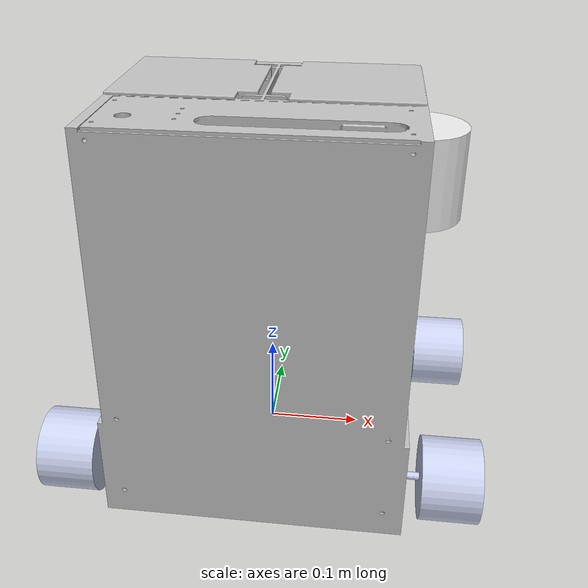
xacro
<?xml version="1.0" encoding="utf-8"?>

<robot
  name="LURDFLGded" xmlns:xacro="http://www.eos.org/wiki/xacro">
  <xacro:include filename="$(find LURDFLGded)/urdf/LURDFLGded.gazebo"/>

  <link
    name="chassis">
    <inertial>
      <origin
        xyz="0.00046120538022093 -0.0153335172566905 0.158906304765902"
        rpy="0 0 0" />
      <mass
        value="4.33488930099209" />
      <inertia
        ixx="0.0490323359013021"
        ixy="0.000138117214056931"
        ixz="-0.0001587753774894"
        iyy="0.054147420803515"
        iyz="0.000619047454446421"
        izz="0.0602418126312572" />
    </inertial>
    <visual>
      <origin
        xyz="0 0 0"
        rpy="0 0 0" />
      <geometry>
        <mesh
          filename="package://LURDFLGded/meshes/base_link.STL" />
      </geometry>
      <material
        name="">
        <color
          rgba="0.752941176470588 0.752941176470588 0.752941176470588 1" />
      </material>
    </visual>
    <collision>
      <origin
        xyz="0 0 0"
        rpy="0 0 0" />
      <geometry>
        <mesh
          filename="package://LURDFLGded/meshes/base_link.STL" />
      </geometry>
    </collision>
  </link>
  <link
    name="wheelLbot">
    <inertial>
      <origin
        xyz="0.0301033654509815 0 5.20417042793042E-17"
        rpy="0 0 0" />
      <mass
        value="0.341374882517028" />
      <inertia
        ixx="0.000307494300753466"
        ixy="1.89763592430369E-21"
        ixz="8.32044667171621E-20"
        iyy="0.000257285131538352"
        iyz="2.19316354091534E-20"
        izz="0.000257285131538352" />
    </inertial>
    <visual>
      <origin
        xyz="0 0 0"
        rpy="0 0 0" />
      <geometry>
        <mesh
          filename="package://LURDFLGded/meshes/wheelLbot.STL" />
      </geometry>
      <material
        name="">
        <color
          rgba="0.792156862745098 0.819607843137255 0.933333333333333 1" />
      </material>
    </visual>
    <collision>
      <origin
        xyz="0 0 0"
        rpy="0 0 0" />
      <geometry>
        <mesh
          filename="package://LURDFLGded/meshes/wheelLbot.STL" />
      </geometry>
    </collision>
  </link>
  <joint
    name="left wheel bottom"
    type="revolute">
    <origin
      xyz="-0.22746 -0.12 0.0285"
      rpy="0 0 0" />
    <parent
      link="chassis" />
    <child
      link="wheelLbot" />
    <axis
      xyz="-1 0 0" />
    <limit
      lower="0"
      upper="1"
      effort="1"
      velocity="1" />
  </joint>
  <link
    name="WheelRbot">
    <inertial>
      <origin
        xyz="-0.0301033654509815 -4.85722573273506E-17 -3.46944695195361E-18"
        rpy="0 0 0" />
      <mass
        value="0.341374882517028" />
      <inertia
        ixx="0.000307494300753466"
        ixy="7.91751685575152E-20"
        ixz="-2.40257481487409E-21"
        iyy="0.000257285131538352"
        iyz="-1.82039705356076E-21"
        izz="0.000257285131538352" />
    </inertial>
    <visual>
      <origin
        xyz="0 0 0"
        rpy="0 0 0" />
      <geometry>
        <mesh
          filename="package://LURDFLGded/meshes/WheelRbot.STL" />
      </geometry>
      <material
        name="">
        <color
          rgba="0.792156862745098 0.819607843137255 0.933333333333333 1" />
      </material>
    </visual>
    <collision>
      <origin
        xyz="0 0 0"
        rpy="0 0 0" />
      <geometry>
        <mesh
          filename="package://LURDFLGded/meshes/WheelRbot.STL" />
      </geometry>
    </collision>
  </link>
  <joint
    name="right wheel bottom"
    type="revolute">
    <origin
      xyz="0.22746 -0.12 0.0285"
      rpy="0 0 0" />
    <parent
      link="chassis" />
    <child
      link="WheelRbot" />
    <axis
      xyz="1 0 0" />
    <limit
      lower="0"
      upper="1"
      effort="1"
      velocity="1" />
  </joint>
  <link
    name="wheelLtop">
    <inertial>
      <origin
        xyz="0.0301033654509821 1.66533453693773E-16 -5.3776427755281E-16"
        rpy="0 0 0" />
      <mass
        value="0.341374882517028" />
      <inertia
        ixx="0.000307494300753466"
        ixy="-7.23030661146666E-21"
        ixz="-8.86422056017286E-20"
        iyy="0.000257285131538352"
        iyz="-7.02011642261501E-21"
        izz="0.000257285131538352" />
    </inertial>
    <visual>
      <origin
        xyz="0 0 0"
        rpy="0 0 0" />
      <geometry>
        <mesh
          filename="package://LURDFLGded/meshes/wheelLtop.STL" />
      </geometry>
      <material
        name="">
        <color
          rgba="0.792156862745098 0.819607843137255 0.933333333333333 1" />
      </material>
    </visual>
    <collision>
      <origin
        xyz="0 0 0"
        rpy="0 0 0" />
      <geometry>
        <mesh
          filename="package://LURDFLGded/meshes/wheelLtop.STL" />
      </geometry>
    </collision>
  </link>

<link name="sensor_laser">
    <inertial>
      <origin xyz="0 0 0" rpy="0 0 0" />
      <mass value="1" />
      <!-- RANDOM INERTIA BELOW -->
      <inertia ixx="0.02" ixy="0" ixz="0" iyy="0.02" iyz="0" izz="0.02"/>
    </inertial>

    <visual>
      <origin xyz="0 0 0" rpy="0 0 0" />
      <geometry>
        <cylinder radius="0.05" length="0.1"/>
      </geometry>
      <material name="white" />
    </visual>

    <collision>
      <origin xyz="0 0 0" rpy="0 0 0"/>
      <geometry>
        <cylinder radius="0.05" length="0.1"/>
      </geometry>
    </collision>
  </link>

  <joint
    name="left wheel top"
    type="revolute">
    <origin
      xyz="-0.22746 0.12 0.0285"
      rpy="0 0 0" />
    <parent
      link="chassis" />
    <child
      link="wheelLtop" />
    <axis
      xyz="-1 0 0" />
    <limit
      lower="0"
      upper="1"
      effort="1"
      velocity="1" />
  </joint>
  <link
    name="wheelRtop">
    <inertial>
      <origin
        xyz="-0.0301033654509815 -5.55111512312578E-17 0"
        rpy="0 0 0" />
      <mass
        value="0.341374882517028" />
      <inertia
        ixx="0.000307494300753466"
        ixy="8.46642739148505E-20"
        ixz="2.09640505019045E-21"
        iyy="0.000257285131538352"
        iyz="1.39265226528679E-21"
        izz="0.000257285131538352" />
    </inertial>
    <visual>
      <origin
        xyz="0 0 0"
        rpy="0 0 0" />
      <geometry>
        <mesh
          filename="package://LURDFLGded/meshes/wheelRtop.STL" />
      </geometry>
      <material
        name="">
        <color
          rgba="0.792156862745098 0.819607843137255 0.933333333333333 1" />
      </material>
    </visual>
    <collision>
      <origin
        xyz="0 0 0"
        rpy="0 0 0" />
      <geometry>
        <mesh
          filename="package://LURDFLGded/meshes/wheelRtop.STL" />
      </geometry>
    </collision>
  </link>
  <joint
    name="right wheel top"
    type="revolute">
    <origin
      xyz="0.22746 0.12 0.0285"
      rpy="0 0 0" />
    <parent
      link="chassis" />
    <child
      link="wheelRtop" />
    <axis
      xyz="1 0 0" />
    <limit
      lower="0"
      upper="1"
      effort="1"
      velocity="1" />
  </joint>

  <joint name="joint_sensor_laser" type="fixed">
    <origin xyz="0.15 0.05 0.3" rpy="0 0 0"/>
    <parent link="chassis"/>
    <child link="sensor_laser"/>
  </joint>

</robot>
